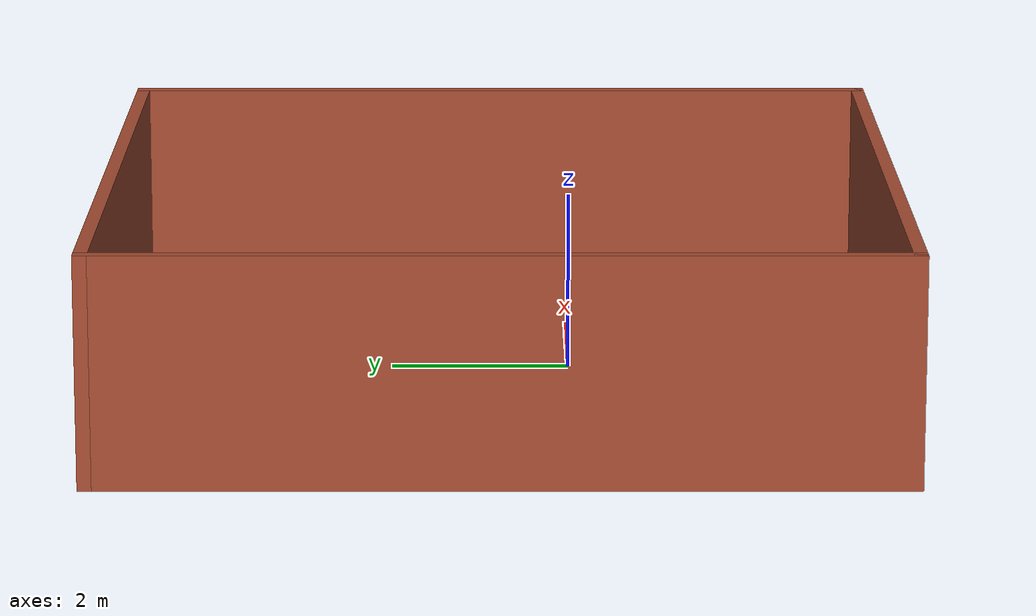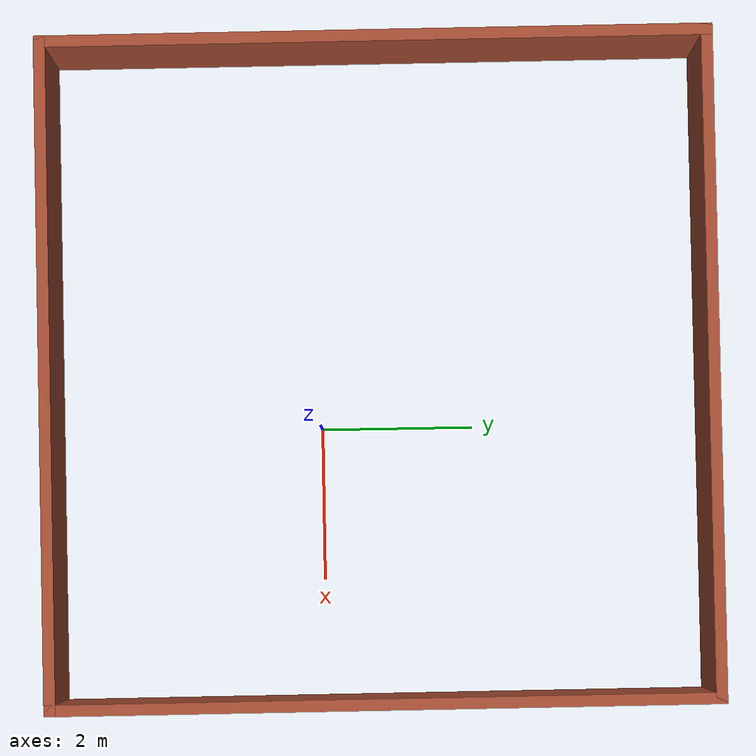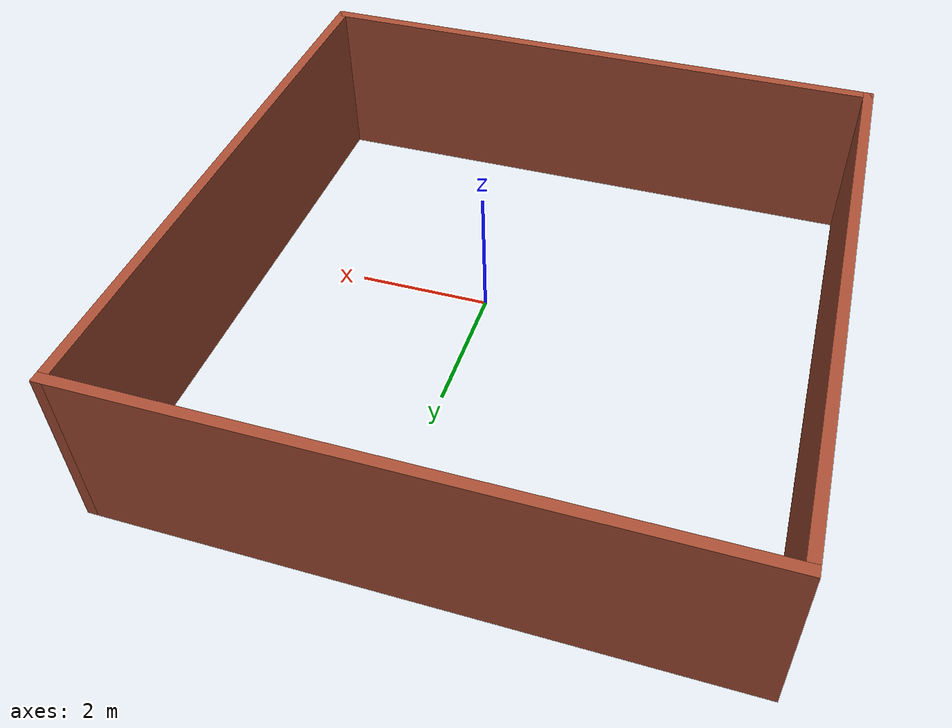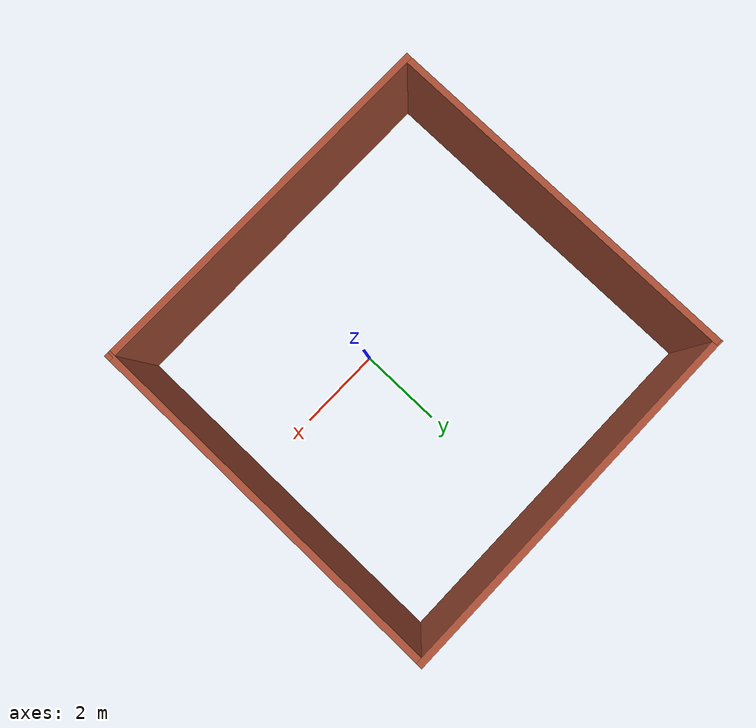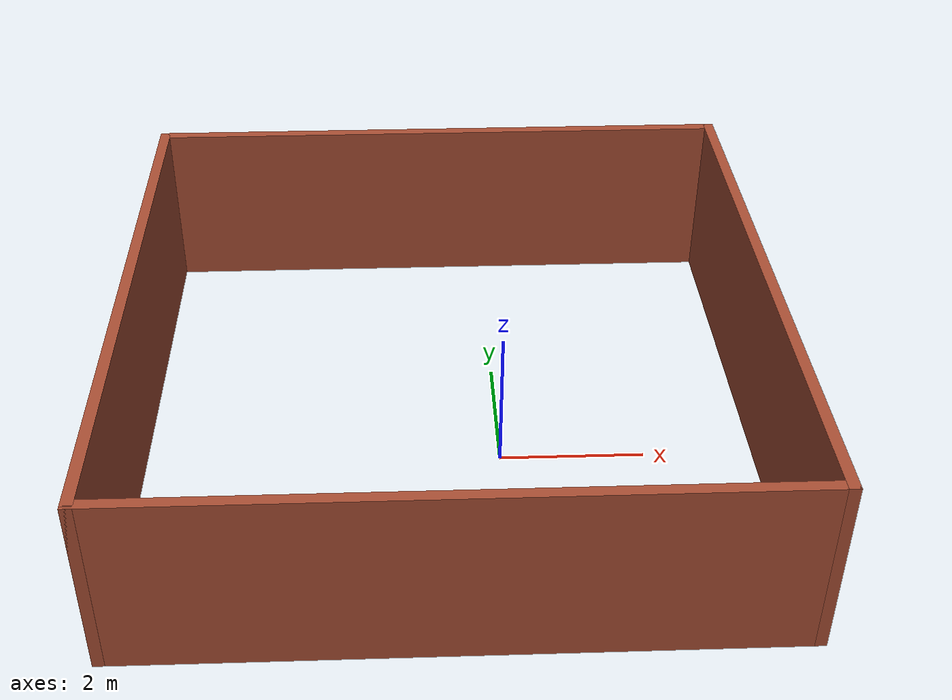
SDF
<?xml version='1.0'?>
<sdf version='1.6'>
  <model name='ROS_Square'>
    <pose frame=''>-0.693393 0.771667 0 0 -0 0</pose>
    <link name='Wall_0'>
      <collision name='Wall_0_Collision'>
        <geometry>
          <box>
            <size>8.75 0.15 2.5</size>
          </box>
        </geometry>
        <pose frame=''>0 0 1.25 0 -0 0</pose>
      </collision>
      <visual name='Wall_0_Visual'>
        <pose frame=''>0 0 1.25 0 -0 0</pose>
        <geometry>
          <box>
            <size>8.75 0.15 2.5</size>
          </box>
        </geometry>
        <material>
          <script>
            <uri>file://media/materials/scripts/gazebo.material</uri>
            <name>Gazebo/Bricks</name>
          </script>
          <ambient>1 1 1 1</ambient>
        </material>
        <meta>
          <layer>0</layer>
        </meta>
      </visual>
      <pose frame=''>0 -4.3 0 0 -0 0</pose>
    </link>
    <link name='Wall_1'>
      <collision name='Wall_1_Collision'>
        <geometry>
          <box>
            <size>8.75 0.15 2.5</size>
          </box>
        </geometry>
        <pose frame=''>0 0 1.25 0 -0 0</pose>
      </collision>
      <visual name='Wall_1_Visual'>
        <pose frame=''>0 0 1.25 0 -0 0</pose>
        <geometry>
          <box>
            <size>8.75 0.15 2.5</size>
          </box>
        </geometry>
        <material>
          <script>
            <uri>file://media/materials/scripts/gazebo.material</uri>
            <name>Gazebo/Bricks</name>
          </script>
          <ambient>1 1 1 1</ambient>
        </material>
        <meta>
          <layer>0</layer>
        </meta>
      </visual>
      <pose frame=''>4.3 -0 0 0 -0 1.5708</pose>
    </link>
    <link name='Wall_2'>
      <collision name='Wall_2_Collision'>
        <geometry>
          <box>
            <size>8.75 0.15 2.5</size>
          </box>
        </geometry>
        <pose frame=''>0 0 1.25 0 -0 0</pose>
      </collision>
      <visual name='Wall_2_Visual'>
        <pose frame=''>0 0 1.25 0 -0 0</pose>
        <geometry>
          <box>
            <size>8.75 0.15 2.5</size>
          </box>
        </geometry>
        <material>
          <script>
            <uri>file://media/materials/scripts/gazebo.material</uri>
            <name>Gazebo/Bricks</name>
          </script>
          <ambient>1 1 1 1</ambient>
        </material>
        <meta>
          <layer>0</layer>
        </meta>
      </visual>
      <pose frame=''>0 4.3 0 0 -0 3.14159</pose>
    </link>
    <link name='Wall_3'>
      <collision name='Wall_3_Collision'>
        <geometry>
          <box>
            <size>8.75 0.15 2.5</size>
          </box>
        </geometry>
        <pose frame=''>0 0 1.25 0 -0 0</pose>
      </collision>
      <visual name='Wall_3_Visual'>
        <pose frame=''>0 0 1.25 0 -0 0</pose>
        <geometry>
          <box>
            <size>8.75 0.15 2.5</size>
          </box>
        </geometry>
        <material>
          <script>
            <uri>file://media/materials/scripts/gazebo.material</uri>
            <name>Gazebo/Bricks</name>
          </script>
          <ambient>1 1 1 1</ambient>
        </material>
        <meta>
          <layer>0</layer>
        </meta>
      </visual>
      <pose frame=''>-4.3 -0 0 0 -0 -1.5708</pose>
    </link>
    <static>1</static>
  </model>
</sdf>
